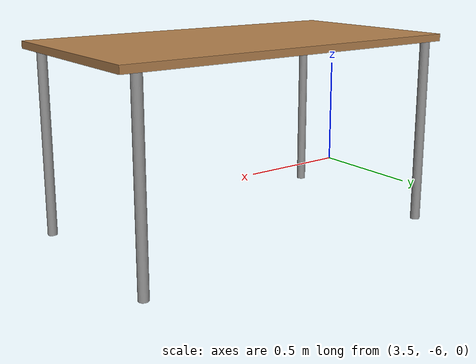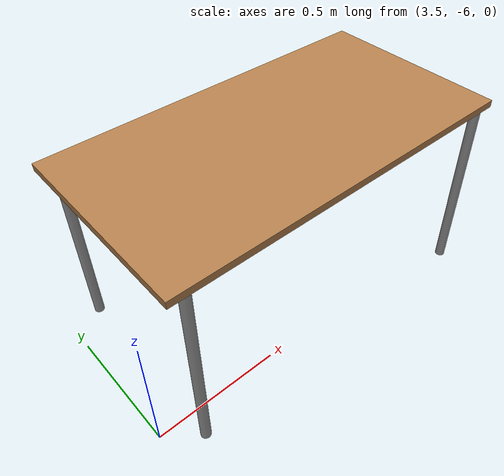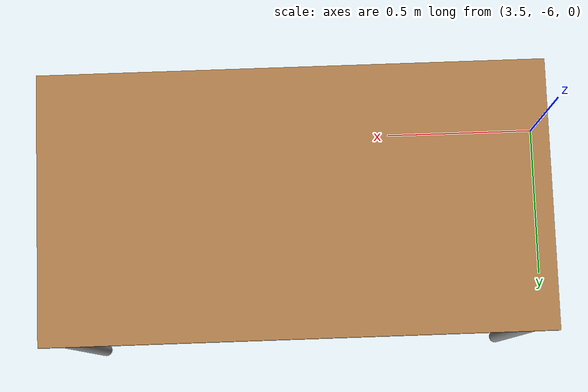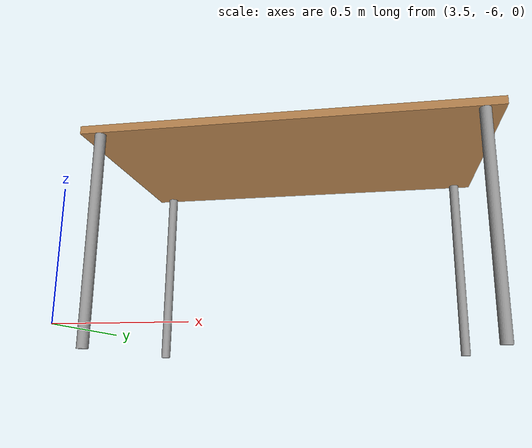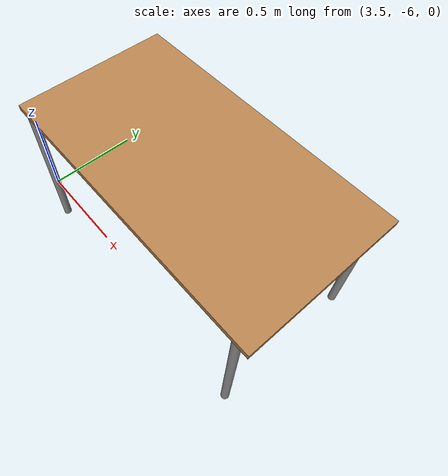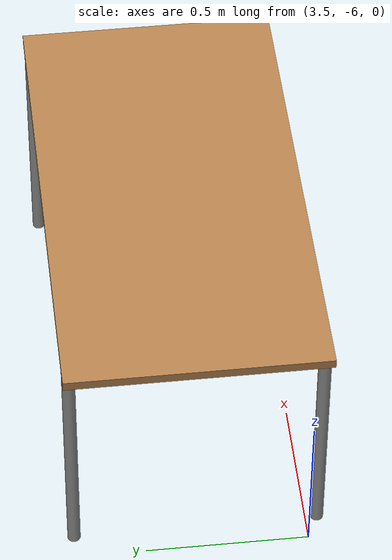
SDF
<?xml version='1.0'?>
<sdf version='1.7'>
    <model name='Table'>
      <static>1</static>
      <link name='link'>
        <collision name='surface'>
          <pose>0 0 0.7 0 -0 0</pose>
          <geometry>
            <box>
              <size>1.5 0.8 0.03</size>
            </box>
          </geometry>
          <surface>
            <friction>
              <ode>
                <mu>0.6</mu>
                <mu2>0.6</mu2>
              </ode>
              <torsional>
                <ode/>
              </torsional>
            </friction>
            <contact>
              <ode/>
            </contact>
            <bounce/>
          </surface>
          <max_contacts>10</max_contacts>
        </collision>
        <visual name='visual1'>
          <pose>0 0 0.7 0 -0 0</pose>
          <geometry>
            <box>
              <size>1.5 0.8 0.03</size>
            </box>
          </geometry>
          <material>
            <diffuse>1 1 1 1</diffuse>
            <script>
              <uri>file://media/materials/scripts/gazebo.material</uri>
              <name>Gazebo/Wood</name>
            </script>
            <pbr>
              <metal>
                <albedo_map>https://fuel.ignitionrobotics.org/1.0/openrobotics/models/table/4/files/Table_Diffuse.jpg</albedo_map>
              </metal>
            </pbr>
          </material>
        </visual>
        <collision name='front_left_leg'>
          <pose>0.68 0.38 0.3 0 -0 0</pose>
          <geometry>
            <cylinder>
              <radius>0.02</radius>
              <length>0.78</length>
            </cylinder>
          </geometry>
          <max_contacts>10</max_contacts>
          <surface>
            <contact>
              <ode/>
            </contact>
            <bounce/>
            <friction>
              <torsional>
                <ode/>
              </torsional>
              <ode/>
            </friction>
          </surface>
        </collision>
        <visual name='front_left_leg'>
          <pose>0.68 0.38 0.3 0 -0 0</pose>
          <geometry>
            <cylinder>
              <radius>0.02</radius>
              <length>0.78</length>
            </cylinder>
          </geometry>
          <material>
            <diffuse>0.5 0.5 0.5 1</diffuse>
            <script>
              <uri>file://media/materials/scripts/gazebo.material</uri>
              <name>Gazebo/Grey</name>
            </script>
          </material>
        </visual>
        <collision name='front_right_leg'>
          <pose>0.68 -0.38 0.3 0 -0 0</pose>
          <geometry>
            <cylinder>
              <radius>0.02</radius>
              <length>0.78</length>
            </cylinder>
          </geometry>
          <max_contacts>10</max_contacts>
          <surface>
            <contact>
              <ode/>
            </contact>
            <bounce/>
            <friction>
              <torsional>
                <ode/>
              </torsional>
              <ode/>
            </friction>
          </surface>
        </collision>
        <visual name='front_right_leg'>
          <pose>0.68 -0.38 0.3 0 -0 0</pose>
          <geometry>
            <cylinder>
              <radius>0.02</radius>
              <length>0.78</length>
            </cylinder>
          </geometry>
          <material>
            <diffuse>0.5 0.5 0.5 1</diffuse>
            <script>
              <uri>file://media/materials/scripts/gazebo.material</uri>
              <name>Gazebo/Grey</name>
            </script>
          </material>
        </visual>
        <collision name='back_right_leg'>
          <pose>-0.68 -0.38 0.3 0 -0 0</pose>
          <geometry>
            <cylinder>
              <radius>0.02</radius>
              <length>0.78</length>
            </cylinder>
          </geometry>
          <max_contacts>10</max_contacts>
          <surface>
            <contact>
              <ode/>
            </contact>
            <bounce/>
            <friction>
              <torsional>
                <ode/>
              </torsional>
              <ode/>
            </friction>
          </surface>
        </collision>
        <visual name='back_right_leg'>
          <pose>-0.68 -0.38 0.3 0 -0 0</pose>
          <geometry>
            <cylinder>
              <radius>0.02</radius>
              <length>0.78</length>
            </cylinder>
          </geometry>
          <material>
            <diffuse>0.5 0.5 0.5 1</diffuse>
            <script>
              <uri>file://media/materials/scripts/gazebo.material</uri>
              <name>Gazebo/Grey</name>
            </script>
          </material>
        </visual>
        <collision name='back_left_leg'>
          <pose>-0.68 0.38 0.3 0 -0 0</pose>
          <geometry>
            <cylinder>
              <radius>0.02</radius>
              <length>0.78</length>
            </cylinder>
          </geometry>
          <max_contacts>10</max_contacts>
          <surface>
            <contact>
              <ode/>
            </contact>
            <bounce/>
            <friction>
              <torsional>
                <ode/>
              </torsional>
              <ode/>
            </friction>
          </surface>
        </collision>
        <visual name='back_left_leg'>
          <pose>-0.68 0.38 0.3 0 -0 0</pose>
          <geometry>
            <cylinder>
              <radius>0.02</radius>
              <length>0.78</length>
            </cylinder>
          </geometry>
          <material>
            <diffuse>0.5 0.5 0.5 1</diffuse>
            <script>
              <uri>file://media/materials/scripts/gazebo.material</uri>
              <name>Gazebo/Grey</name>
            </script>
          </material>
        </visual>
        <self_collide>0</self_collide>
        <enable_wind>0</enable_wind>
        <kinematic>0</kinematic>
      </link>
      <pose>4.33075 -5.6696 0 0 -0 0</pose>
    </model>
</sdf>
